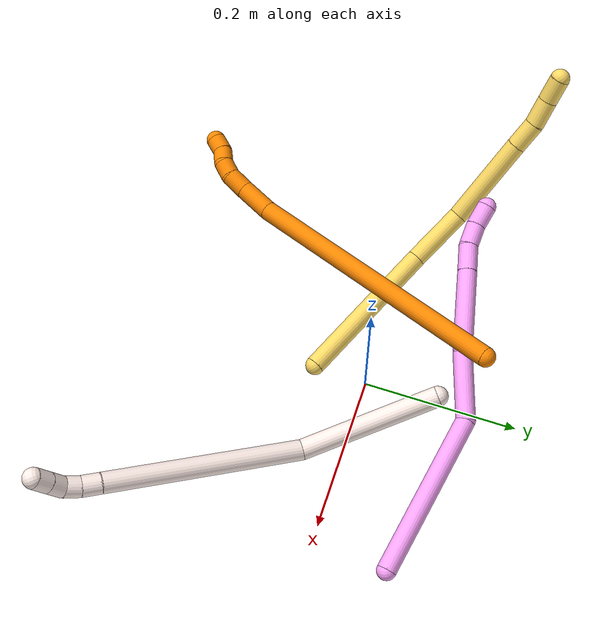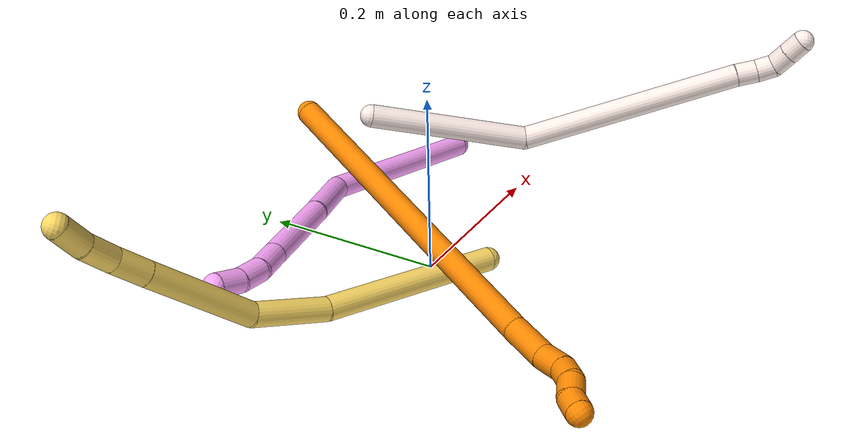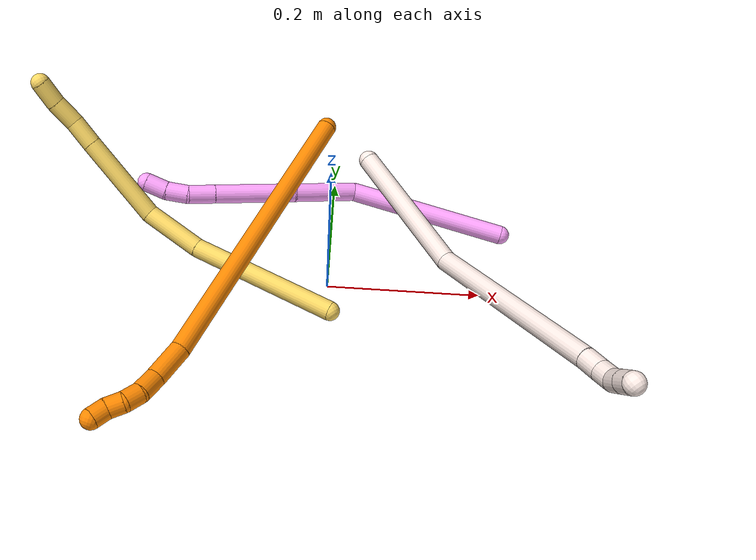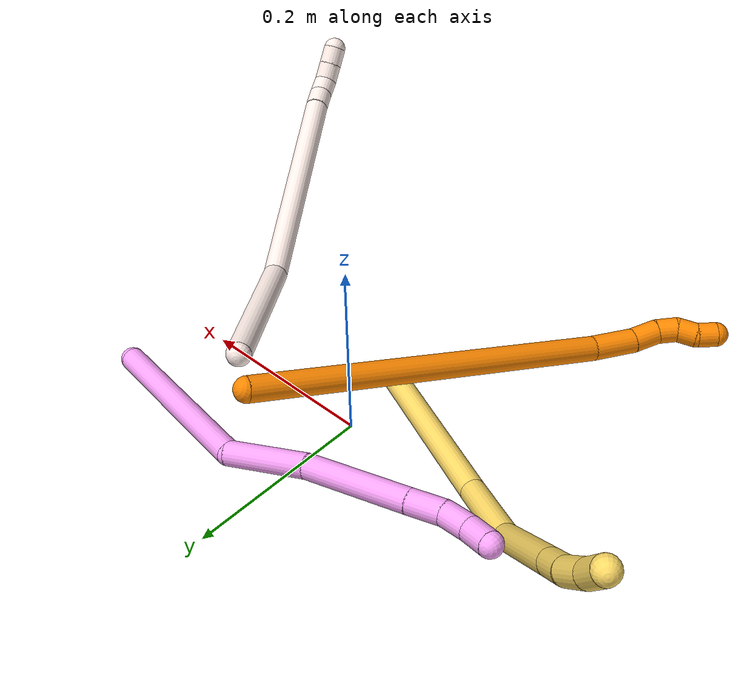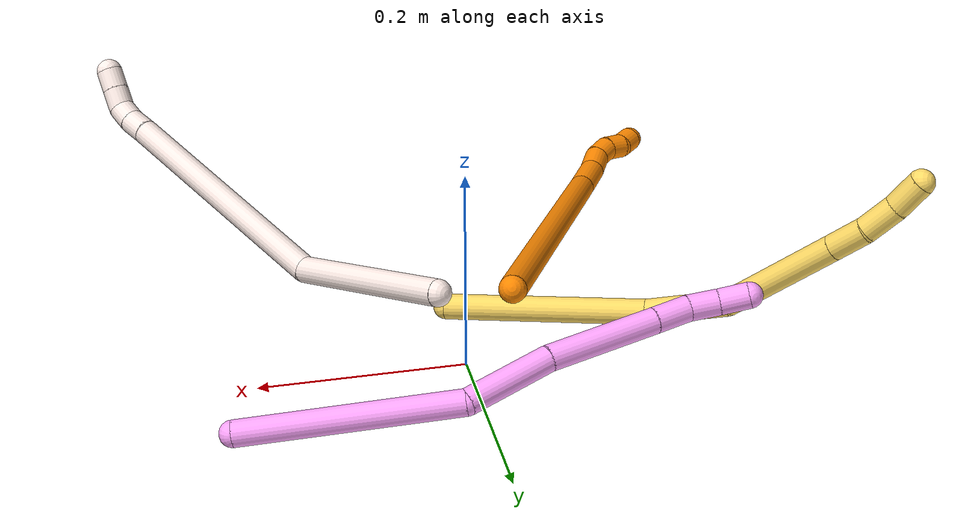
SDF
<sdf version="1.7">
 <world name="default">
  <model name="photoneo_s_sensor">
   <static>1</static>
   <pose>0 0 2 1.57079 1.57079 3.14159</pose>
   <link name="link">
    <inertial><mass>0.1</mass></inertial>
    <sensor name="sensor" type="depth">
     <update_rate>30</update_rate>
     <camera>
      <horizontal_fov>1.22</horizontal_fov>
      <image><width>1920</width><height>1200</height><format>B8G8R8</format></image>
      <clip><near>0.1</near><far>4</far></clip>
      <depth_camera><output>points</output></depth_camera>
     </camera>
     <plugin name="camera_plugin" filename="libgazebo_ros_depth_camera.so">
      <baseline>0.2</baseline>
      <alwaysOn>1</alwaysOn>
      <updateRate>0.0</updateRate>
      <cameraName>camera_ir</cameraName>
      <imageTopicName>/camera/color/image_raw</imageTopicName>
      <cameraInfoTopicName>/camera/color/camera_info</cameraInfoTopicName>
      <depthImageTopicName>/camera/depth/image_raw</depthImageTopicName>
      <depthImageCameraInfoTopicName>/camera/depth/camera_info</depthImageCameraInfoTopicName>
      <pointCloudTopicName>/camera/depth/points</pointCloudTopicName>
      <frameName>fr_optical</frameName>
      <pointCloudCutoff>0.1</pointCloudCutoff>
      <pointCloudCutoffMax>2.0</pointCloudCutoffMax>
      <distortionK1>0</distortionK1>
      <distortionK2>0</distortionK2>
      <distortionK3>0</distortionK3>
      <distortionT1>0</distortionT1>
      <distortionT2>0</distortionT2>
      <CxPrime>0</CxPrime>
      <Cx>0</Cx>
      <Cy>0</Cy>
      <focalLength>0</focalLength>
      <hackBaseline>0</hackBaseline>
     </plugin>
    </sensor>
   </link>
  </model>
  <model name="bin">
   <static>1</static>
   <link name="bottom">
    <collision name="collision-bottom">
     <pose>0 0 -0.01 0 -0 0</pose>
     <geometry><box><size>0.8 0.6 0.02</size></box></geometry>
     <surface>
      <friction><ode><mu>100</mu><mu2>100</mu2></ode></friction>
      <contact><collide_bitmask>65535</collide_bitmask></contact>
     </surface>
    </collision>
   </link>
   <link name="west_wall">
    <collision name="collision-west_wall">
     <pose>-0.41 0 0.1 0 -0 0</pose>
     <geometry><box><size>0.02 0.6 0.2</size></box></geometry>
     <surface>
      <friction><ode><mu>100</mu><mu2>100</mu2></ode></friction>
      <contact><collide_bitmask>65535</collide_bitmask></contact>
     </surface>
    </collision>
   </link>
   <link name="east_wall">
    <collision name="collision-east_wall">
     <pose>0.41 0 0.1 0 -0 0</pose>
     <geometry><box><size>0.02 0.6 0.2</size></box></geometry>
     <surface>
      <friction><ode><mu>100</mu><mu2>100</mu2></ode></friction>
      <contact><collide_bitmask>65535</collide_bitmask></contact>
     </surface>
    </collision>
   </link>
   <link name="south_wall">
    <collision name="collision-south_wall">
     <pose>0 -0.31 0.1 0 -0 0</pose>
     <geometry><box><size>0.8 0.02 0.2</size></box></geometry>
     <surface>
      <friction><ode><mu>100</mu><mu2>100</mu2></ode></friction>
      <contact><collide_bitmask>65535</collide_bitmask></contact>
     </surface>
    </collision>
   </link>
   <link name="north_wall">
    <collision name="collision-north_wall">
     <pose>0 0.31 0.1 0 -0 0</pose>
     <geometry><box><size>0.8 0.02 0.2</size></box></geometry>
     <surface>
      <friction><ode><mu>100</mu><mu2>100</mu2></ode></friction>
      <contact><collide_bitmask>65535</collide_bitmask></contact>
     </surface>
    </collision>
   </link>
  </model>
  <model name="4">
   <static>0</static>
   <link name="4">
    <collision name="collision-cylinder-e_1_1_4">
     <pose>-0.089664 -0.032513 -0.043669 2.5016 -1.0251 -2.07714</pose>
     <geometry><cylinder><radius>0.0125</radius><length>0.209797</length></cylinder></geometry>
     <surface>
      <friction><ode><mu>1.16</mu><mu2>1.16</mu2><slip1>0</slip1><slip2>0</slip2></ode></friction>
      <contact><ode><kp>1e+06</kp><kd>1</kd><max_vel>0</max_vel><min_depth>0.001</min_depth></ode></contact>
     </surface>
    </collision>
    <visual name="visual-cylinder-e_1_1_4">
     <pose>-0.089664 -0.032513 -0.043669 2.5016 -1.0251 -2.07714</pose>
     <geometry><cylinder><radius>0.0125</radius><length>0.209797</length></cylinder></geometry>
     <material><ambient>1 0.65098 0.996078 1</ambient></material>
    </visual>
    <collision name="collision-cylinder-e_2_4_5">
     <pose>-0.222317 -0.070871 -0.085175 1.21623 -1.42683 -1.08448</pose>
     <geometry><cylinder><radius>0.0125</radius><length>0.086878</length></cylinder></geometry>
     <surface>
      <friction><ode><mu>1.16</mu><mu2>1.16</mu2><slip1>0</slip1><slip2>0</slip2></ode></friction>
      <contact><ode><kp>1e+06</kp><kd>1</kd><max_vel>0</max_vel><min_depth>0.001</min_depth></ode></contact>
     </surface>
    </collision>
    <visual name="visual-cylinder-e_2_4_5">
     <pose>-0.222317 -0.070871 -0.085175 1.21623 -1.42683 -1.08448</pose>
     <geometry><cylinder><radius>0.0125</radius><length>0.086878</length></cylinder></geometry>
     <material><ambient>1 0.65098 0.996078 1</ambient></material>
    </visual>
    <collision name="collision-cylinder-e_3_5_6">
     <pose>-0.317976 -0.090621 -0.084279 1.66174 -1.31166 -1.4006</pose>
     <geometry><cylinder><radius>0.0125</radius><length>0.108977</length></cylinder></geometry>
     <surface>
      <friction><ode><mu>1.16</mu><mu2>1.16</mu2><slip1>0</slip1><slip2>0</slip2></ode></friction>
      <contact><ode><kp>1e+06</kp><kd>1</kd><max_vel>0</max_vel><min_depth>0.001</min_depth></ode></contact>
     </surface>
    </collision>
    <visual name="visual-cylinder-e_3_5_6">
     <pose>-0.317976 -0.090621 -0.084279 1.66174 -1.31166 -1.4006</pose>
     <geometry><cylinder><radius>0.0125</radius><length>0.108977</length></cylinder></geometry>
     <material><ambient>1 0.65098 0.996078 1</ambient></material>
    </visual>
    <collision name="collision-cylinder-e_4_6_7">
     <pose>-0.387972 -0.108953 -0.08582 1.63243 -1.32018 -1.38035</pose>
     <geometry><cylinder><radius>0.0125</radius><length>0.035771</length></cylinder></geometry>
     <surface>
      <friction><ode><mu>1.16</mu><mu2>1.16</mu2><slip1>0</slip1><slip2>0</slip2></ode></friction>
      <contact><ode><kp>1e+06</kp><kd>1</kd><max_vel>0</max_vel><min_depth>0.001</min_depth></ode></contact>
     </surface>
    </collision>
    <visual name="visual-cylinder-e_4_6_7">
     <pose>-0.387972 -0.108953 -0.08582 1.63243 -1.32018 -1.38035</pose>
     <geometry><cylinder><radius>0.0125</radius><length>0.035771</length></cylinder></geometry>
     <material><ambient>1 0.65098 0.996078 1</ambient></material>
    </visual>
    <collision name="collision-cylinder-e_5_7_8">
     <pose>-0.418806 -0.117911 -0.0902 2.30711 -1.14566 -1.93734</pose>
     <geometry><cylinder><radius>0.0125</radius><length>0.029655</length></cylinder></geometry>
     <surface>
      <friction><ode><mu>1.16</mu><mu2>1.16</mu2><slip1>0</slip1><slip2>0</slip2></ode></friction>
      <contact><ode><kp>1e+06</kp><kd>1</kd><max_vel>0</max_vel><min_depth>0.001</min_depth></ode></contact>
     </surface>
    </collision>
    <visual name="visual-cylinder-e_5_7_8">
     <pose>-0.418806 -0.117911 -0.0902 2.30711 -1.14566 -1.93734</pose>
     <geometry><cylinder><radius>0.0125</radius><length>0.029655</length></cylinder></geometry>
     <material><ambient>1 0.65098 0.996078 1</ambient></material>
    </visual>
    <collision name="collision-cylinder-e_6_8_2">
     <pose>-0.444689 -0.125235 -0.101247 2.75904 -1.02712 -2.48018</pose>
     <geometry><cylinder><radius>0.0125</radius><length>0.028923</length></cylinder></geometry>
     <surface>
      <friction><ode><mu>1.16</mu><mu2>1.16</mu2><slip1>0</slip1><slip2>0</slip2></ode></friction>
      <contact><ode><kp>1e+06</kp><kd>1</kd><max_vel>0</max_vel><min_depth>0.001</min_depth></ode></contact>
     </surface>
    </collision>
    <visual name="visual-cylinder-e_6_8_2">
     <pose>-0.444689 -0.125235 -0.101247 2.75904 -1.02712 -2.48018</pose>
     <geometry><cylinder><radius>0.0125</radius><length>0.028923</length></cylinder></geometry>
     <material><ambient>1 0.65098 0.996078 1</ambient></material>
    </visual>
    <collision name="collision-sphere-2">
     <pose>-0.457066 -0.128027 -0.108187 0 -0 0</pose>
     <geometry><sphere><radius>0.0125</radius></sphere></geometry>
     <surface>
      <friction><ode><mu>1.16</mu><mu2>1.16</mu2><slip1>0</slip1><slip2>0</slip2></ode></friction>
      <contact><ode><kp>1e+06</kp><kd>1</kd><max_vel>0</max_vel><min_depth>0.001</min_depth></ode></contact>
     </surface>
    </collision>
    <visual name="visual-sphere-2">
     <pose>-0.457066 -0.128027 -0.108187 0 -0 0</pose>
     <geometry><sphere><radius>0.0125</radius></sphere></geometry>
     <material><ambient>1 0.65098 0.996078 1</ambient></material>
    </visual>
    <collision name="collision-sphere-4">
     <pose>-0.179327 -0.065027 -0.087338 0 -0 0</pose>
     <geometry><sphere><radius>0.0125</radius></sphere></geometry>
     <surface>
      <friction><ode><mu>1.16</mu><mu2>1.16</mu2><slip1>0</slip1><slip2>0</slip2></ode></friction>
      <contact><ode><kp>1e+06</kp><kd>1</kd><max_vel>0</max_vel><min_depth>0.001</min_depth></ode></contact>
     </surface>
    </collision>
    <visual name="visual-sphere-4">
     <pose>-0.179327 -0.065027 -0.087338 0 -0 0</pose>
     <geometry><sphere><radius>0.0125</radius></sphere></geometry>
     <material><ambient>1 0.65098 0.996078 1</ambient></material>
    </visual>
    <collision name="collision-sphere-1">
     <geometry><sphere><radius>0.0125</radius></sphere></geometry>
     <surface>
      <friction><ode><mu>1.16</mu><mu2>1.16</mu2><slip1>0</slip1><slip2>0</slip2></ode></friction>
      <contact><ode><kp>1e+06</kp><kd>1</kd><max_vel>0</max_vel><min_depth>0.001</min_depth></ode></contact>
     </surface>
    </collision>
    <visual name="visual-sphere-1">
     <geometry><sphere><radius>0.0125</radius></sphere></geometry>
     <material><ambient>1 0.65098 0.996078 1</ambient></material>
    </visual>
    <collision name="collision-sphere-8">
     <pose>-0.432313 -0.122442 -0.094307 0 -0 0</pose>
     <geometry><sphere><radius>0.0125</radius></sphere></geometry>
     <surface>
      <friction><ode><mu>1.16</mu><mu2>1.16</mu2><slip1>0</slip1><slip2>0</slip2></ode></friction>
      <contact><ode><kp>1e+06</kp><kd>1</kd><max_vel>0</max_vel><min_depth>0.001</min_depth></ode></contact>
     </surface>
    </collision>
    <visual name="visual-sphere-8">
     <pose>-0.432313 -0.122442 -0.094307 0 -0 0</pose>
     <geometry><sphere><radius>0.0125</radius></sphere></geometry>
     <material><ambient>1 0.65098 0.996078 1</ambient></material>
    </visual>
    <collision name="collision-sphere-5">
     <pose>-0.265307 -0.076716 -0.083011 0 -0 0</pose>
     <geometry><sphere><radius>0.0125</radius></sphere></geometry>
     <surface>
      <friction><ode><mu>1.16</mu><mu2>1.16</mu2><slip1>0</slip1><slip2>0</slip2></ode></friction>
      <contact><ode><kp>1e+06</kp><kd>1</kd><max_vel>0</max_vel><min_depth>0.001</min_depth></ode></contact>
     </surface>
    </collision>
    <visual name="visual-sphere-5">
     <pose>-0.265307 -0.076716 -0.083011 0 -0 0</pose>
     <geometry><sphere><radius>0.0125</radius></sphere></geometry>
     <material><ambient>1 0.65098 0.996078 1</ambient></material>
    </visual>
    <collision name="collision-sphere-6">
     <pose>-0.370645 -0.104525 -0.085547 0 -0 0</pose>
     <geometry><sphere><radius>0.0125</radius></sphere></geometry>
     <surface>
      <friction><ode><mu>1.16</mu><mu2>1.16</mu2><slip1>0</slip1><slip2>0</slip2></ode></friction>
      <contact><ode><kp>1e+06</kp><kd>1</kd><max_vel>0</max_vel><min_depth>0.001</min_depth></ode></contact>
     </surface>
    </collision>
    <visual name="visual-sphere-6">
     <pose>-0.370645 -0.104525 -0.085547 0 -0 0</pose>
     <geometry><sphere><radius>0.0125</radius></sphere></geometry>
     <material><ambient>1 0.65098 0.996078 1</ambient></material>
    </visual>
    <collision name="collision-sphere-7">
     <pose>-0.405298 -0.11338 -0.086093 0 -0 0</pose>
     <geometry><sphere><radius>0.0125</radius></sphere></geometry>
     <surface>
      <friction><ode><mu>1.16</mu><mu2>1.16</mu2><slip1>0</slip1><slip2>0</slip2></ode></friction>
      <contact><ode><kp>1e+06</kp><kd>1</kd><max_vel>0</max_vel><min_depth>0.001</min_depth></ode></contact>
     </surface>
    </collision>
    <visual name="visual-sphere-7">
     <pose>-0.405298 -0.11338 -0.086093 0 -0 0</pose>
     <geometry><sphere><radius>0.0125</radius></sphere></geometry>
     <material><ambient>1 0.65098 0.996078 1</ambient></material>
    </visual>
    <inertial>
     <pose>-0.223874 -0.06774 -0.068838 0 -0 0</pose>
     <mass>0.5</mass>
     <inertia>
      <ixx>-0.000616</ixx>
      <ixy>0</ixy>
      <ixz>0</ixz>
      <iyy>0.00042</iyy>
      <iyz>0</iyz>
      <izz>0.001113</izz>
     </inertia>
    </inertial>
   </link>
   <pose>0.231583 0.097939 0.018322 1.90013 0.347756 0.332135</pose>
  </model>
  <model name="5">
   <static>0</static>
   <link name="5">
    <collision name="collision-cylinder-e_1_1_4">
     <pose>-0.041342 -0.029527 0.084978 0.334413 -0.43077 -0.073818</pose>
     <geometry><cylinder><radius>0.0125</radius><length>0.198013</length></cylinder></geometry>
     <surface>
      <friction><ode><mu>1.16</mu><mu2>1.16</mu2><slip1>0</slip1><slip2>0</slip2></ode></friction>
      <contact><ode><kp>1e+06</kp><kd>1</kd><max_vel>0</max_vel><min_depth>0.001</min_depth></ode></contact>
     </surface>
    </collision>
    <visual name="visual-cylinder-e_1_1_4">
     <pose>-0.041342 -0.029527 0.084978 0.334413 -0.43077 -0.073818</pose>
     <geometry><cylinder><radius>0.0125</radius><length>0.198013</length></cylinder></geometry>
     <material><ambient>1 0.858824 0.4 1</ambient></material>
    </visual>
    <collision name="collision-cylinder-e_2_4_5">
     <pose>-0.091941 -0.069805 0.207375 0.279787 -0.233426 -0.033017</pose>
     <geometry><cylinder><radius>0.0125</radius><length>0.080037</length></cylinder></geometry>
     <surface>
      <friction><ode><mu>1.16</mu><mu2>1.16</mu2><slip1>0</slip1><slip2>0</slip2></ode></friction>
      <contact><ode><kp>1e+06</kp><kd>1</kd><max_vel>0</max_vel><min_depth>0.001</min_depth></ode></contact>
     </surface>
    </collision>
    <visual name="visual-cylinder-e_2_4_5">
     <pose>-0.091941 -0.069805 0.207375 0.279787 -0.233426 -0.033017</pose>
     <geometry><cylinder><radius>0.0125</radius><length>0.080037</length></cylinder></geometry>
     <material><ambient>1 0.858824 0.4 1</ambient></material>
    </visual>
    <collision name="collision-cylinder-e_3_5_6">
     <pose>-0.090639 -0.097584 0.301042 0.293955 0.177765 0.026385</pose>
     <geometry><cylinder><radius>0.0125</radius><length>0.119418</length></cylinder></geometry>
     <surface>
      <friction><ode><mu>1.16</mu><mu2>1.16</mu2><slip1>0</slip1><slip2>0</slip2></ode></friction>
      <contact><ode><kp>1e+06</kp><kd>1</kd><max_vel>0</max_vel><min_depth>0.001</min_depth></ode></contact>
     </surface>
    </collision>
    <visual name="visual-cylinder-e_3_5_6">
     <pose>-0.090639 -0.097584 0.301042 0.293955 0.177765 0.026385</pose>
     <geometry><cylinder><radius>0.0125</radius><length>0.119418</length></cylinder></geometry>
     <material><ambient>1 0.858824 0.4 1</ambient></material>
    </visual>
    <collision name="collision-cylinder-e_4_6_7">
     <pose>-0.076696 -0.119398 0.374111 0.27723 0.191202 0.026754</pose>
     <geometry><cylinder><radius>0.0125</radius><length>0.035629</length></cylinder></geometry>
     <surface>
      <friction><ode><mu>1.16</mu><mu2>1.16</mu2><slip1>0</slip1><slip2>0</slip2></ode></friction>
      <contact><ode><kp>1e+06</kp><kd>1</kd><max_vel>0</max_vel><min_depth>0.001</min_depth></ode></contact>
     </surface>
    </collision>
    <visual name="visual-cylinder-e_4_6_7">
     <pose>-0.076696 -0.119398 0.374111 0.27723 0.191202 0.026754</pose>
     <geometry><cylinder><radius>0.0125</radius><length>0.035629</length></cylinder></geometry>
     <material><ambient>1 0.858824 0.4 1</ambient></material>
    </visual>
    <collision name="collision-cylinder-e_5_7_8">
     <pose>-0.068927 -0.13178 0.40583 0.471501 0.256357 0.061901</pose>
     <geometry><cylinder><radius>0.0125</radius><length>0.034573</length></cylinder></geometry>
     <surface>
      <friction><ode><mu>1.16</mu><mu2>1.16</mu2><slip1>0</slip1><slip2>0</slip2></ode></friction>
      <contact><ode><kp>1e+06</kp><kd>1</kd><max_vel>0</max_vel><min_depth>0.001</min_depth></ode></contact>
     </surface>
    </collision>
    <visual name="visual-cylinder-e_5_7_8">
     <pose>-0.068927 -0.13178 0.40583 0.471501 0.256357 0.061901</pose>
     <geometry><cylinder><radius>0.0125</radius><length>0.034573</length></cylinder></geometry>
     <material><ambient>1 0.858824 0.4 1</ambient></material>
    </visual>
    <collision name="collision-cylinder-e_6_8_2">
     <pose>-0.058055 -0.145579 0.43417 0.432362 0.413054 0.091959</pose>
     <geometry><cylinder><radius>0.0125</radius><length>0.032331</length></cylinder></geometry>
     <surface>
      <friction><ode><mu>1.16</mu><mu2>1.16</mu2><slip1>0</slip1><slip2>0</slip2></ode></friction>
      <contact><ode><kp>1e+06</kp><kd>1</kd><max_vel>0</max_vel><min_depth>0.001</min_depth></ode></contact>
     </surface>
    </collision>
    <visual name="visual-cylinder-e_6_8_2">
     <pose>-0.058055 -0.145579 0.43417 0.432362 0.413054 0.091959</pose>
     <geometry><cylinder><radius>0.0125</radius><length>0.032331</length></cylinder></geometry>
     <material><ambient>1 0.858824 0.4 1</ambient></material>
    </visual>
    <collision name="collision-sphere-2">
     <pose>-0.051566 -0.151783 0.447614 0 -0 0</pose>
     <geometry><sphere><radius>0.0125</radius></sphere></geometry>
     <surface>
      <friction><ode><mu>1.16</mu><mu2>1.16</mu2><slip1>0</slip1><slip2>0</slip2></ode></friction>
      <contact><ode><kp>1e+06</kp><kd>1</kd><max_vel>0</max_vel><min_depth>0.001</min_depth></ode></contact>
     </surface>
    </collision>
    <visual name="visual-sphere-2">
     <pose>-0.051566 -0.151783 0.447614 0 -0 0</pose>
     <geometry><sphere><radius>0.0125</radius></sphere></geometry>
     <material><ambient>1 0.858824 0.4 1</ambient></material>
    </visual>
    <collision name="collision-sphere-4">
     <pose>-0.082684 -0.059053 0.169956 0 -0 0</pose>
     <geometry><sphere><radius>0.0125</radius></sphere></geometry>
     <surface>
      <friction><ode><mu>1.16</mu><mu2>1.16</mu2><slip1>0</slip1><slip2>0</slip2></ode></friction>
      <contact><ode><kp>1e+06</kp><kd>1</kd><max_vel>0</max_vel><min_depth>0.001</min_depth></ode></contact>
     </surface>
    </collision>
    <visual name="visual-sphere-4">
     <pose>-0.082684 -0.059053 0.169956 0 -0 0</pose>
     <geometry><sphere><radius>0.0125</radius></sphere></geometry>
     <material><ambient>1 0.858824 0.4 1</ambient></material>
    </visual>
    <collision name="collision-sphere-1">
     <geometry><sphere><radius>0.0125</radius></sphere></geometry>
     <surface>
      <friction><ode><mu>1.16</mu><mu2>1.16</mu2><slip1>0</slip1><slip2>0</slip2></ode></friction>
      <contact><ode><kp>1e+06</kp><kd>1</kd><max_vel>0</max_vel><min_depth>0.001</min_depth></ode></contact>
     </surface>
    </collision>
    <visual name="visual-sphere-1">
     <geometry><sphere><radius>0.0125</radius></sphere></geometry>
     <material><ambient>1 0.858824 0.4 1</ambient></material>
    </visual>
    <collision name="collision-sphere-8">
     <pose>-0.064544 -0.139375 0.420727 0 -0 0</pose>
     <geometry><sphere><radius>0.0125</radius></sphere></geometry>
     <surface>
      <friction><ode><mu>1.16</mu><mu2>1.16</mu2><slip1>0</slip1><slip2>0</slip2></ode></friction>
      <contact><ode><kp>1e+06</kp><kd>1</kd><max_vel>0</max_vel><min_depth>0.001</min_depth></ode></contact>
     </surface>
    </collision>
    <visual name="visual-sphere-8">
     <pose>-0.064544 -0.139375 0.420727 0 -0 0</pose>
     <geometry><sphere><radius>0.0125</radius></sphere></geometry>
     <material><ambient>1 0.858824 0.4 1</ambient></material>
    </visual>
    <collision name="collision-sphere-5">
     <pose>-0.101198 -0.080556 0.244794 0 -0 0</pose>
     <geometry><sphere><radius>0.0125</radius></sphere></geometry>
     <surface>
      <friction><ode><mu>1.16</mu><mu2>1.16</mu2><slip1>0</slip1><slip2>0</slip2></ode></friction>
      <contact><ode><kp>1e+06</kp><kd>1</kd><max_vel>0</max_vel><min_depth>0.001</min_depth></ode></contact>
     </surface>
    </collision>
    <visual name="visual-sphere-5">
     <pose>-0.101198 -0.080556 0.244794 0 -0 0</pose>
     <geometry><sphere><radius>0.0125</radius></sphere></geometry>
     <material><ambient>1 0.858824 0.4 1</ambient></material>
    </visual>
    <collision name="collision-sphere-6">
     <pose>-0.080081 -0.114611 0.357289 0 -0 0</pose>
     <geometry><sphere><radius>0.0125</radius></sphere></geometry>
     <surface>
      <friction><ode><mu>1.16</mu><mu2>1.16</mu2><slip1>0</slip1><slip2>0</slip2></ode></friction>
      <contact><ode><kp>1e+06</kp><kd>1</kd><max_vel>0</max_vel><min_depth>0.001</min_depth></ode></contact>
     </surface>
    </collision>
    <visual name="visual-sphere-6">
     <pose>-0.080081 -0.114611 0.357289 0 -0 0</pose>
     <geometry><sphere><radius>0.0125</radius></sphere></geometry>
     <material><ambient>1 0.858824 0.4 1</ambient></material>
    </visual>
    <collision name="collision-sphere-7">
     <pose>-0.07331 -0.124185 0.390933 0 -0 0</pose>
     <geometry><sphere><radius>0.0125</radius></sphere></geometry>
     <surface>
      <friction><ode><mu>1.16</mu><mu2>1.16</mu2><slip1>0</slip1><slip2>0</slip2></ode></friction>
      <contact><ode><kp>1e+06</kp><kd>1</kd><max_vel>0</max_vel><min_depth>0.001</min_depth></ode></contact>
     </surface>
    </collision>
    <visual name="visual-sphere-7">
     <pose>-0.07331 -0.124185 0.390933 0 -0 0</pose>
     <geometry><sphere><radius>0.0125</radius></sphere></geometry>
     <material><ambient>1 0.858824 0.4 1</ambient></material>
    </visual>
    <inertial>
     <pose>-0.066723 -0.073207 0.221542 0 -0 0</pose>
     <mass>0.5</mass>
     <inertia>
      <ixx>0.000751</ixx>
      <ixy>0</ixy>
      <ixz>0</ixz>
      <iyy>0.000768</iyy>
      <iyz>0</iyz>
      <izz>0.000544</izz>
     </inertia>
    </inertial>
   </link>
   <pose>0.006414 -0.066593 0.027335 -0.528869 -1.04387 -0.244478</pose>
  </model>
  <model name="11">
   <static>0</static>
   <link name="11">
    <collision name="collision-cylinder-e_1_1_4">
     <pose>0.000314 -0.000833 0.086729 0.009609 0.003615 1.7e-05</pose>
     <geometry><cylinder><radius>0.0125</radius><length>0.173466</length></cylinder></geometry>
     <surface>
      <friction><ode><mu>1.16</mu><mu2>1.16</mu2><slip1>0</slip1><slip2>0</slip2></ode></friction>
      <contact><ode><kp>1e+06</kp><kd>1</kd><max_vel>0</max_vel><min_depth>0.001</min_depth></ode></contact>
     </surface>
    </collision>
    <visual name="visual-cylinder-e_1_1_4">
     <pose>0.000314 -0.000833 0.086729 0.009609 0.003615 1.7e-05</pose>
     <geometry><cylinder><radius>0.0125</radius><length>0.173466</length></cylinder></geometry>
     <material><ambient>1 0.933333 0.909804 1</ambient></material>
    </visual>
    <collision name="collision-cylinder-e_2_4_5">
     <pose>0.056993 -0.020323 0.279347 0.174395 0.482843 0.043043</pose>
     <geometry><cylinder><radius>0.0125</radius><length>0.242799</length></cylinder></geometry>
     <surface>
      <friction><ode><mu>1.16</mu><mu2>1.16</mu2><slip1>0</slip1><slip2>0</slip2></ode></friction>
      <contact><ode><kp>1e+06</kp><kd>1</kd><max_vel>0</max_vel><min_depth>0.001</min_depth></ode></contact>
     </surface>
    </collision>
    <visual name="visual-cylinder-e_2_4_5">
     <pose>0.056993 -0.020323 0.279347 0.174395 0.482843 0.043043</pose>
     <geometry><cylinder><radius>0.0125</radius><length>0.242799</length></cylinder></geometry>
     <material><ambient>1 0.933333 0.909804 1</ambient></material>
    </visual>
    <collision name="collision-cylinder-e_3_5_6">
     <pose>0.118046 -0.040145 0.395574 0.112271 0.423366 0.024151</pose>
     <geometry><cylinder><radius>0.0125</radius><length>0.022819</length></cylinder></geometry>
     <surface>
      <friction><ode><mu>1.16</mu><mu2>1.16</mu2><slip1>0</slip1><slip2>0</slip2></ode></friction>
      <contact><ode><kp>1e+06</kp><kd>1</kd><max_vel>0</max_vel><min_depth>0.001</min_depth></ode></contact>
     </surface>
    </collision>
    <visual name="visual-cylinder-e_3_5_6">
     <pose>0.118046 -0.040145 0.395574 0.112271 0.423366 0.024151</pose>
     <geometry><cylinder><radius>0.0125</radius><length>0.022819</length></cylinder></geometry>
     <material><ambient>1 0.933333 0.909804 1</ambient></material>
    </visual>
    <collision name="collision-cylinder-e_4_6_7">
     <pose>0.128348 -0.041999 0.414217 0.082766 0.592883 0.025293</pose>
     <geometry><cylinder><radius>0.0125</radius><length>0.020099</length></cylinder></geometry>
     <surface>
      <friction><ode><mu>1.16</mu><mu2>1.16</mu2><slip1>0</slip1><slip2>0</slip2></ode></friction>
      <contact><ode><kp>1e+06</kp><kd>1</kd><max_vel>0</max_vel><min_depth>0.001</min_depth></ode></contact>
     </surface>
    </collision>
    <visual name="visual-cylinder-e_4_6_7">
     <pose>0.128348 -0.041999 0.414217 0.082766 0.592883 0.025293</pose>
     <geometry><cylinder><radius>0.0125</radius><length>0.020099</length></cylinder></geometry>
     <material><ambient>1 0.933333 0.909804 1</ambient></material>
    </visual>
    <collision name="collision-cylinder-e_5_7_8">
     <pose>0.143055 -0.044137 0.427077 0.30798 1.08683 0.186983</pose>
     <geometry><cylinder><radius>0.0125</radius><length>0.020542</length></cylinder></geometry>
     <surface>
      <friction><ode><mu>1.16</mu><mu2>1.16</mu2><slip1>0</slip1><slip2>0</slip2></ode></friction>
      <contact><ode><kp>1e+06</kp><kd>1</kd><max_vel>0</max_vel><min_depth>0.001</min_depth></ode></contact>
     </surface>
    </collision>
    <visual name="visual-cylinder-e_5_7_8">
     <pose>0.143055 -0.044137 0.427077 0.30798 1.08683 0.186983</pose>
     <geometry><cylinder><radius>0.0125</radius><length>0.020542</length></cylinder></geometry>
     <material><ambient>1 0.933333 0.909804 1</ambient></material>
    </visual>
    <collision name="collision-cylinder-e_6_8_2">
     <pose>0.161114 -0.04702 0.436136 0.3082 1.0856 0.186858</pose>
     <geometry><cylinder><radius>0.0125</radius><length>0.020275</length></cylinder></geometry>
     <surface>
      <friction><ode><mu>1.16</mu><mu2>1.16</mu2><slip1>0</slip1><slip2>0</slip2></ode></friction>
      <contact><ode><kp>1e+06</kp><kd>1</kd><max_vel>0</max_vel><min_depth>0.001</min_depth></ode></contact>
     </surface>
    </collision>
    <visual name="visual-cylinder-e_6_8_2">
     <pose>0.161114 -0.04702 0.436136 0.3082 1.0856 0.186858</pose>
     <geometry><cylinder><radius>0.0125</radius><length>0.020275</length></cylinder></geometry>
     <material><ambient>1 0.933333 0.909804 1</ambient></material>
    </visual>
    <collision name="collision-sphere-2">
     <pose>0.170081 -0.048454 0.440641 0 -0 0</pose>
     <geometry><sphere><radius>0.0125</radius></sphere></geometry>
     <surface>
      <friction><ode><mu>1.16</mu><mu2>1.16</mu2><slip1>0</slip1><slip2>0</slip2></ode></friction>
      <contact><ode><kp>1e+06</kp><kd>1</kd><max_vel>0</max_vel><min_depth>0.001</min_depth></ode></contact>
     </surface>
    </collision>
    <visual name="visual-sphere-2">
     <pose>0.170081 -0.048454 0.440641 0 -0 0</pose>
     <geometry><sphere><radius>0.0125</radius></sphere></geometry>
     <material><ambient>1 0.933333 0.909804 1</ambient></material>
    </visual>
    <collision name="collision-sphere-4">
     <pose>0.000627 -0.001667 0.173457 0 -0 0</pose>
     <geometry><sphere><radius>0.0125</radius></sphere></geometry>
     <surface>
      <friction><ode><mu>1.16</mu><mu2>1.16</mu2><slip1>0</slip1><slip2>0</slip2></ode></friction>
      <contact><ode><kp>1e+06</kp><kd>1</kd><max_vel>0</max_vel><min_depth>0.001</min_depth></ode></contact>
     </surface>
    </collision>
    <visual name="visual-sphere-4">
     <pose>0.000627 -0.001667 0.173457 0 -0 0</pose>
     <geometry><sphere><radius>0.0125</radius></sphere></geometry>
     <material><ambient>1 0.933333 0.909804 1</ambient></material>
    </visual>
    <collision name="collision-sphere-1">
     <geometry><sphere><radius>0.0125</radius></sphere></geometry>
     <surface>
      <friction><ode><mu>1.16</mu><mu2>1.16</mu2><slip1>0</slip1><slip2>0</slip2></ode></friction>
      <contact><ode><kp>1e+06</kp><kd>1</kd><max_vel>0</max_vel><min_depth>0.001</min_depth></ode></contact>
     </surface>
    </collision>
    <visual name="visual-sphere-1">
     <geometry><sphere><radius>0.0125</radius></sphere></geometry>
     <material><ambient>1 0.933333 0.909804 1</ambient></material>
    </visual>
    <collision name="collision-sphere-8">
     <pose>0.152146 -0.045585 0.431631 0 -0 0</pose>
     <geometry><sphere><radius>0.0125</radius></sphere></geometry>
     <surface>
      <friction><ode><mu>1.16</mu><mu2>1.16</mu2><slip1>0</slip1><slip2>0</slip2></ode></friction>
      <contact><ode><kp>1e+06</kp><kd>1</kd><max_vel>0</max_vel><min_depth>0.001</min_depth></ode></contact>
     </surface>
    </collision>
    <visual name="visual-sphere-8">
     <pose>0.152146 -0.045585 0.431631 0 -0 0</pose>
     <geometry><sphere><radius>0.0125</radius></sphere></geometry>
     <material><ambient>1 0.933333 0.909804 1</ambient></material>
    </visual>
    <collision name="collision-sphere-5">
     <pose>0.113358 -0.038979 0.385237 0 -0 0</pose>
     <geometry><sphere><radius>0.0125</radius></sphere></geometry>
     <surface>
      <friction><ode><mu>1.16</mu><mu2>1.16</mu2><slip1>0</slip1><slip2>0</slip2></ode></friction>
      <contact><ode><kp>1e+06</kp><kd>1</kd><max_vel>0</max_vel><min_depth>0.001</min_depth></ode></contact>
     </surface>
    </collision>
    <visual name="visual-sphere-5">
     <pose>0.113358 -0.038979 0.385237 0 -0 0</pose>
     <geometry><sphere><radius>0.0125</radius></sphere></geometry>
     <material><ambient>1 0.933333 0.909804 1</ambient></material>
    </visual>
    <collision name="collision-sphere-6">
     <pose>0.122733 -0.04131 0.405911 0 -0 0</pose>
     <geometry><sphere><radius>0.0125</radius></sphere></geometry>
     <surface>
      <friction><ode><mu>1.16</mu><mu2>1.16</mu2><slip1>0</slip1><slip2>0</slip2></ode></friction>
      <contact><ode><kp>1e+06</kp><kd>1</kd><max_vel>0</max_vel><min_depth>0.001</min_depth></ode></contact>
     </surface>
    </collision>
    <visual name="visual-sphere-6">
     <pose>0.122733 -0.04131 0.405911 0 -0 0</pose>
     <geometry><sphere><radius>0.0125</radius></sphere></geometry>
     <material><ambient>1 0.933333 0.909804 1</ambient></material>
    </visual>
    <collision name="collision-sphere-7">
     <pose>0.133964 -0.042688 0.422522 0 -0 0</pose>
     <geometry><sphere><radius>0.0125</radius></sphere></geometry>
     <surface>
      <friction><ode><mu>1.16</mu><mu2>1.16</mu2><slip1>0</slip1><slip2>0</slip2></ode></friction>
      <contact><ode><kp>1e+06</kp><kd>1</kd><max_vel>0</max_vel><min_depth>0.001</min_depth></ode></contact>
     </surface>
    </collision>
    <visual name="visual-sphere-7">
     <pose>0.133964 -0.042688 0.422522 0 -0 0</pose>
     <geometry><sphere><radius>0.0125</radius></sphere></geometry>
     <material><ambient>1 0.933333 0.909804 1</ambient></material>
    </visual>
    <inertial>
     <pose>0.050741 -0.017398 0.235674 0 -0 0</pose>
     <mass>0.5</mass>
     <inertia>
      <ixx>0.001569</ixx>
      <ixy>0</ixy>
      <ixz>0</ixz>
      <iyy>0.001677</iyy>
      <iyz>0</iyz>
      <izz>-0.00034</izz>
     </inertia>
    </inertial>
   </link>
   <pose>0.045174 0.098565 0.139386 -2.13052 -1.12579 -1.99981</pose>
  </model>
  <model name="19">
   <static>0</static>
   <link name="19">
    <collision name="collision-cylinder-e_1_1_4">
     <pose>-0.03646 -0.063169 -0.167376 2.78071 -0.20105 -1.01015</pose>
     <geometry><cylinder><radius>0.0125</radius><length>0.365155</length></cylinder></geometry>
     <surface>
      <friction><ode><mu>1.16</mu><mu2>1.16</mu2><slip1>0</slip1><slip2>0</slip2></ode></friction>
      <contact><ode><kp>1e+06</kp><kd>1</kd><max_vel>0</max_vel><min_depth>0.001</min_depth></ode></contact>
     </surface>
    </collision>
    <visual name="visual-cylinder-e_1_1_4">
     <pose>-0.03646 -0.063169 -0.167376 2.78071 -0.20105 -1.01015</pose>
     <geometry><cylinder><radius>0.0125</radius><length>0.365155</length></cylinder></geometry>
     <material><ambient>0.996078 0.537255 0 1</ambient></material>
    </visual>
    <collision name="collision-cylinder-e_2_4_5">
     <pose>-0.079827 -0.136798 -0.354048 2.64487 -0.30484 -1.08925</pose>
     <geometry><cylinder><radius>0.0125</radius><length>0.046018</length></cylinder></geometry>
     <surface>
      <friction><ode><mu>1.16</mu><mu2>1.16</mu2><slip1>0</slip1><slip2>0</slip2></ode></friction>
      <contact><ode><kp>1e+06</kp><kd>1</kd><max_vel>0</max_vel><min_depth>0.001</min_depth></ode></contact>
     </surface>
    </collision>
    <visual name="visual-cylinder-e_2_4_5">
     <pose>-0.079827 -0.136798 -0.354048 2.64487 -0.30484 -1.08925</pose>
     <geometry><cylinder><radius>0.0125</radius><length>0.046018</length></cylinder></geometry>
     <material><ambient>0.996078 0.537255 0 1</ambient></material>
    </visual>
    <collision name="collision-cylinder-e_3_5_6">
     <pose>-0.090934 -0.155715 -0.383397 2.44215 -0.309475 -0.808292</pose>
     <geometry><cylinder><radius>0.0125</radius><length>0.027587</length></cylinder></geometry>
     <surface>
      <friction><ode><mu>1.16</mu><mu2>1.16</mu2><slip1>0</slip1><slip2>0</slip2></ode></friction>
      <contact><ode><kp>1e+06</kp><kd>1</kd><max_vel>0</max_vel><min_depth>0.001</min_depth></ode></contact>
     </surface>
    </collision>
    <visual name="visual-cylinder-e_3_5_6">
     <pose>-0.090934 -0.155715 -0.383397 2.44215 -0.309475 -0.808292</pose>
     <geometry><cylinder><radius>0.0125</radius><length>0.027587</length></cylinder></geometry>
     <material><ambient>0.996078 0.537255 0 1</ambient></material>
    </visual>
    <collision name="collision-cylinder-e_4_6_7">
     <pose>-0.101187 -0.168934 -0.400542 2.5504 -0.616493 -1.61534</pose>
     <geometry><cylinder><radius>0.0125</radius><length>0.020936</length></cylinder></geometry>
     <surface>
      <friction><ode><mu>1.16</mu><mu2>1.16</mu2><slip1>0</slip1><slip2>0</slip2></ode></friction>
      <contact><ode><kp>1e+06</kp><kd>1</kd><max_vel>0</max_vel><min_depth>0.001</min_depth></ode></contact>
     </surface>
    </collision>
    <visual name="visual-cylinder-e_4_6_7">
     <pose>-0.101187 -0.168934 -0.400542 2.5504 -0.616493 -1.61534</pose>
     <geometry><cylinder><radius>0.0125</radius><length>0.020936</length></cylinder></geometry>
     <material><ambient>0.996078 0.537255 0 1</ambient></material>
    </visual>
    <collision name="collision-cylinder-e_5_7_8">
     <pose>-0.11508 -0.174656 -0.413936 2.99015 -0.888106 -2.82531</pose>
     <geometry><cylinder><radius>0.0125</radius><length>0.02021</length></cylinder></geometry>
     <surface>
      <friction><ode><mu>1.16</mu><mu2>1.16</mu2><slip1>0</slip1><slip2>0</slip2></ode></friction>
      <contact><ode><kp>1e+06</kp><kd>1</kd><max_vel>0</max_vel><min_depth>0.001</min_depth></ode></contact>
     </surface>
    </collision>
    <visual name="visual-cylinder-e_5_7_8">
     <pose>-0.11508 -0.174656 -0.413936 2.99015 -0.888106 -2.82531</pose>
     <geometry><cylinder><radius>0.0125</radius><length>0.02021</length></cylinder></geometry>
     <material><ambient>0.996078 0.537255 0 1</ambient></material>
    </visual>
    <collision name="collision-cylinder-e_6_8_2">
     <pose>-0.128442 -0.179599 -0.427627 2.64744 -0.581914 -1.74158</pose>
     <geometry><cylinder><radius>0.0125</radius><length>0.020093</length></cylinder></geometry>
     <surface>
      <friction><ode><mu>1.16</mu><mu2>1.16</mu2><slip1>0</slip1><slip2>0</slip2></ode></friction>
      <contact><ode><kp>1e+06</kp><kd>1</kd><max_vel>0</max_vel><min_depth>0.001</min_depth></ode></contact>
     </surface>
    </collision>
    <visual name="visual-cylinder-e_6_8_2">
     <pose>-0.128442 -0.179599 -0.427627 2.64744 -0.581914 -1.74158</pose>
     <geometry><cylinder><radius>0.0125</radius><length>0.020093</length></cylinder></geometry>
     <material><ambient>0.996078 0.537255 0 1</ambient></material>
    </visual>
    <collision name="collision-sphere-2">
     <pose>-0.133964 -0.18358 -0.435016 0 -0 0</pose>
     <geometry><sphere><radius>0.0125</radius></sphere></geometry>
     <surface>
      <friction><ode><mu>1.16</mu><mu2>1.16</mu2><slip1>0</slip1><slip2>0</slip2></ode></friction>
      <contact><ode><kp>1e+06</kp><kd>1</kd><max_vel>0</max_vel><min_depth>0.001</min_depth></ode></contact>
     </surface>
    </collision>
    <visual name="visual-sphere-2">
     <pose>-0.133964 -0.18358 -0.435016 0 -0 0</pose>
     <geometry><sphere><radius>0.0125</radius></sphere></geometry>
     <material><ambient>0.996078 0.537255 0 1</ambient></material>
    </visual>
    <collision name="collision-sphere-4">
     <pose>-0.072921 -0.126339 -0.334752 0 -0 0</pose>
     <geometry><sphere><radius>0.0125</radius></sphere></geometry>
     <surface>
      <friction><ode><mu>1.16</mu><mu2>1.16</mu2><slip1>0</slip1><slip2>0</slip2></ode></friction>
      <contact><ode><kp>1e+06</kp><kd>1</kd><max_vel>0</max_vel><min_depth>0.001</min_depth></ode></contact>
     </surface>
    </collision>
    <visual name="visual-sphere-4">
     <pose>-0.072921 -0.126339 -0.334752 0 -0 0</pose>
     <geometry><sphere><radius>0.0125</radius></sphere></geometry>
     <material><ambient>0.996078 0.537255 0 1</ambient></material>
    </visual>
    <collision name="collision-sphere-1">
     <geometry><sphere><radius>0.0125</radius></sphere></geometry>
     <surface>
      <friction><ode><mu>1.16</mu><mu2>1.16</mu2><slip1>0</slip1><slip2>0</slip2></ode></friction>
      <contact><ode><kp>1e+06</kp><kd>1</kd><max_vel>0</max_vel><min_depth>0.001</min_depth></ode></contact>
     </surface>
    </collision>
    <visual name="visual-sphere-1">
     <geometry><sphere><radius>0.0125</radius></sphere></geometry>
     <material><ambient>0.996078 0.537255 0 1</ambient></material>
    </visual>
    <collision name="collision-sphere-8">
     <pose>-0.12292 -0.175618 -0.420238 0 -0 0</pose>
     <geometry><sphere><radius>0.0125</radius></sphere></geometry>
     <surface>
      <friction><ode><mu>1.16</mu><mu2>1.16</mu2><slip1>0</slip1><slip2>0</slip2></ode></friction>
      <contact><ode><kp>1e+06</kp><kd>1</kd><max_vel>0</max_vel><min_depth>0.001</min_depth></ode></contact>
     </surface>
    </collision>
    <visual name="visual-sphere-8">
     <pose>-0.12292 -0.175618 -0.420238 0 -0 0</pose>
     <geometry><sphere><radius>0.0125</radius></sphere></geometry>
     <material><ambient>0.996078 0.537255 0 1</ambient></material>
    </visual>
    <collision name="collision-sphere-5">
     <pose>-0.086733 -0.147257 -0.373344 0 -0 0</pose>
     <geometry><sphere><radius>0.0125</radius></sphere></geometry>
     <surface>
      <friction><ode><mu>1.16</mu><mu2>1.16</mu2><slip1>0</slip1><slip2>0</slip2></ode></friction>
      <contact><ode><kp>1e+06</kp><kd>1</kd><max_vel>0</max_vel><min_depth>0.001</min_depth></ode></contact>
     </surface>
    </collision>
    <visual name="visual-sphere-5">
     <pose>-0.086733 -0.147257 -0.373344 0 -0 0</pose>
     <geometry><sphere><radius>0.0125</radius></sphere></geometry>
     <material><ambient>0.996078 0.537255 0 1</ambient></material>
    </visual>
    <collision name="collision-sphere-6">
     <pose>-0.095135 -0.164174 -0.393451 0 -0 0</pose>
     <geometry><sphere><radius>0.0125</radius></sphere></geometry>
     <surface>
      <friction><ode><mu>1.16</mu><mu2>1.16</mu2><slip1>0</slip1><slip2>0</slip2></ode></friction>
      <contact><ode><kp>1e+06</kp><kd>1</kd><max_vel>0</max_vel><min_depth>0.001</min_depth></ode></contact>
     </surface>
    </collision>
    <visual name="visual-sphere-6">
     <pose>-0.095135 -0.164174 -0.393451 0 -0 0</pose>
     <geometry><sphere><radius>0.0125</radius></sphere></geometry>
     <material><ambient>0.996078 0.537255 0 1</ambient></material>
    </visual>
    <collision name="collision-sphere-7">
     <pose>-0.10724 -0.173695 -0.407634 0 -0 0</pose>
     <geometry><sphere><radius>0.0125</radius></sphere></geometry>
     <surface>
      <friction><ode><mu>1.16</mu><mu2>1.16</mu2><slip1>0</slip1><slip2>0</slip2></ode></friction>
      <contact><ode><kp>1e+06</kp><kd>1</kd><max_vel>0</max_vel><min_depth>0.001</min_depth></ode></contact>
     </surface>
    </collision>
    <visual name="visual-sphere-7">
     <pose>-0.10724 -0.173695 -0.407634 0 -0 0</pose>
     <geometry><sphere><radius>0.0125</radius></sphere></geometry>
     <material><ambient>0.996078 0.537255 0 1</ambient></material>
    </visual>
    <inertial>
     <pose>-0.053042 -0.088666 -0.226664 0 -0 0</pose>
     <mass>0.5</mass>
     <inertia>
      <ixx>-0.001276</ixx>
      <ixy>0</ixy>
      <ixz>0</ixz>
      <iyy>-0.00519</iyy>
      <iyz>0</iyz>
      <izz>0.002202</izz>
     </inertia>
    </inertial>
   </link>
   <pose>-0.012681 0.138505 0.158636 -0.945538 0.204361 -0.172977</pose>
  </model>
 </world>
</sdf>
